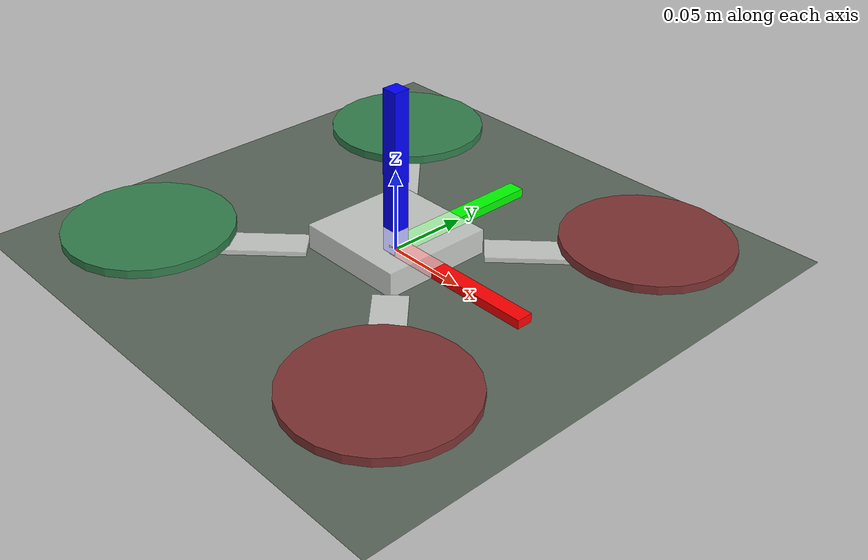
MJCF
<mujoco model="quadrotor">
<compiler inertiafromgeom="auto" coordinate="local"/>
<option timestep="0.001" gravity="0 0 -9.81" integrator="Euler" density="1" viscosity="1e-5" jacobian="dense">
    <flag energy="enable" contact="enable" sensornoise="enable"/>
</option>
<size nconmax="500" njmax="1500" nkey="1"/>
  <asset>
    <texture name="grid" type="2d" builtin="checker" rgb1=".5 .5 .3"
     rgb2=".2 .3 .4" width="300" height="300"/>
    <material name="grid" texture="grid" texrepeat="8 8" reflectance=".2"/>
  </asset>
  <worldbody>
  <light diffuse="1 1 1" pos="0 0 20" dir="0 0 -1"/>
  <camera pos="-0.225 -3.653 6.399" xyaxes="0.999 0.044 0.000 -0.036 0.816 0.577"/>
  <geom type="plane" size="15 15 0.1" material="grid"/>
  <body name="quadrotor" pos="0 0 0" euler="0 0 0">
    <geom name="core" type="box" pos="0 0 0" quat="1. 0. 0. 0" size="0.035 0.035 0.015" rgba="1 1 1 0.7" mass=".4"/>
    <geom name="a00" type="box" pos=".071 0.071 0.0" size="0.05 0.01 0.0025" quat=".924 0.0 0.0 0.383" rgba="1 1 1 0.7" mass=".025"/>
    <geom name="a10" type="box" pos=".071 -0.071 0.0" size="0.05 0.01 0.0025" quat=".383 0.0 0.0 0.924" rgba="1 1 1 0.7" mass=".025"/>
    <geom name="a20" type="box" pos="-0.071 -0.071 0.0" size="0.05 0.01 0.0025" quat="-.383 0.0 0.0 0.924" rgba="1 1 1 0.7" mass=".025"/>
    <geom name="a30" type="box" pos="-.071 0.071 0.0" size="0.05 0.01 0.0025" quat=".924 0.0 0.0 -0.383" rgba="1 1 1 0.7" mass=".025"/>
    <joint name="root" type="free" damping="0" armature="0" pos="0 0 0"/>
    <!--  Actuator sites to attach actuators, make it invisible  -->
    <site name="thrust" type="box" pos="0 0 0" size="0.035 0.035 0.015" quat="1.0 0.0 0.0 0." rgba="0 1 1 0"/>
    <site name="rateX" type="box" pos="0 0 0" quat="1. 0. 0. 0." size="0.06 0.035 0.015" rgba="0 1 1 0"/>
    <site name="rateY" type="box" pos="0 0 0" quat="1. 0. 0. 0." size="0.06 0.035 0.015" rgba="0 1 1 0"/>
    <site name="rateZ" type="box" pos="0 0 0" quat="1. 0. 0. 0." size="0.06 0.035 0.015" rgba="0 1 1 0"/>
    <!--  Thruster geometries for collisions since site's are excluded from collision checking  -->
    <geom name="thruster0" type="cylinder" pos=" 0.1 0.1 0.01" size="0.05 0.0025" quat="1.0 0.0 0.0 0." rgba="0.5 0.2 0.2 1" mass=".015"/>
    <geom name="thruster1" type="cylinder" pos=" 0.1 -0.1 0.01" size="0.05 0.0025" quat="1.0 0.0 0.0 0." rgba="0.5 0.2 0.2 1" mass=".015"/>
    <geom name="thruster2" type="cylinder" pos="-0.1 -0.1 0.01" size="0.05 0.0025" quat="1.0 0.0 0.0 0." rgba="0.2 0.5 0.3 1" mass=".015"/>
    <geom name="thruster3" type="cylinder" pos="-0.1 0.1 0.01" size="0.05 0.0025" quat="1.0 0.0 0.0 0." rgba="0.2 0.5 0.3 1" mass=".015"/>
    <!--  Visualization of the coordinate frame  -->
    <site name="qcX" type="box" pos="0.05 0.0 0.0" size="0.05 0.005 0.005" quat=" 1.000 0.0 0.0 0." rgba="1 0 0 1"/>
    <site name="qcY" type="box" pos="0.0 0.05 0.0" size="0.05 0.005 0.005" quat=" 0.707 0.0 0.0 0.707" rgba="0 1 0 1"/>
    <site name="qcZ" type="box" pos="0.0 0.0 0.05" size="0.05 0.005 0.005" quat="-0.707 0.0 0.707 0." rgba="0 0 1 1"/>
    </body>
  </worldbody>
    <actuator>
    <motor ctrllimited="true" ctrlrange="0.0 20.0" gear="0 0. 1. 0. 0. 0." site="thrust"/>
    <motor ctrllimited="true" ctrlrange="-0.07 0.07" gear="0. 0. 0. 1. 0. 0." site="rateX"/>
    <motor ctrllimited="true" ctrlrange="-0.07 0.07" gear="0. 0. 0. 0. 1. 0." site="rateY"/>
    <motor ctrllimited="true" ctrlrange="-0.03 0.03" gear="0. 0. 0. 0. 0. 1." site="rateZ"/>
    </actuator>
  <sensor>
  <framequat name="quat_drone" objtype="geom" reftype="body" refname="world" objname="core" noise="0.0005"/>
  <framepos name="position_drone" objtype="geom" objname="core" noise="0.0005"/>
  <velocimeter name="linear_velocity_drone" site="thrust" noise="0.0005"/>
  <gyro name="angular_velocity_drone" site="thrust" noise="0.0005"/>
  </sensor>
</mujoco>
